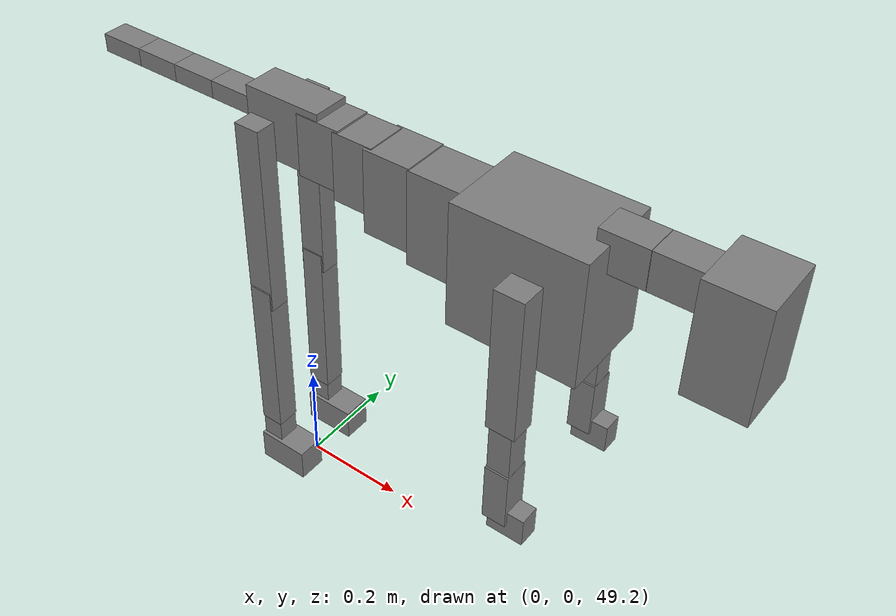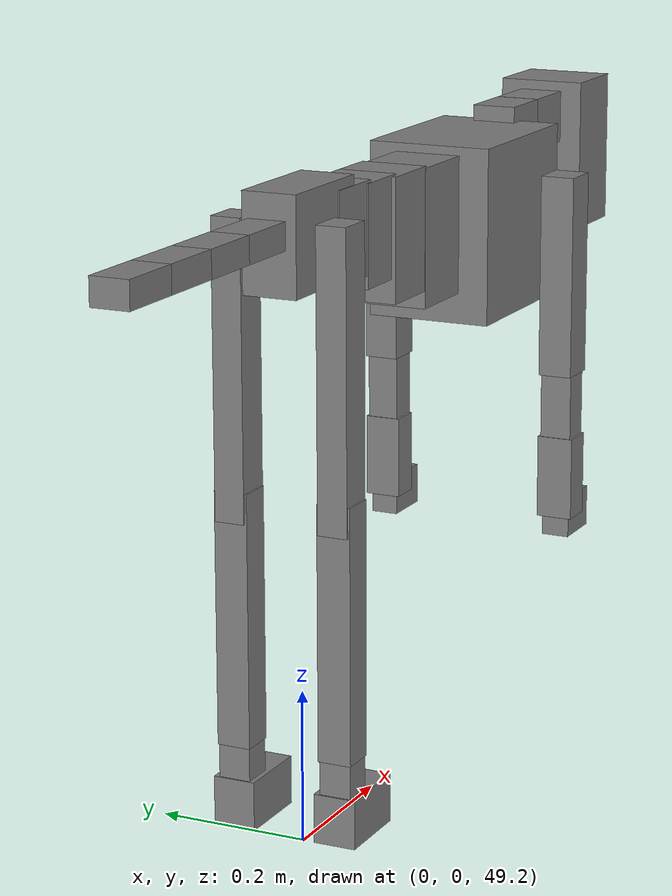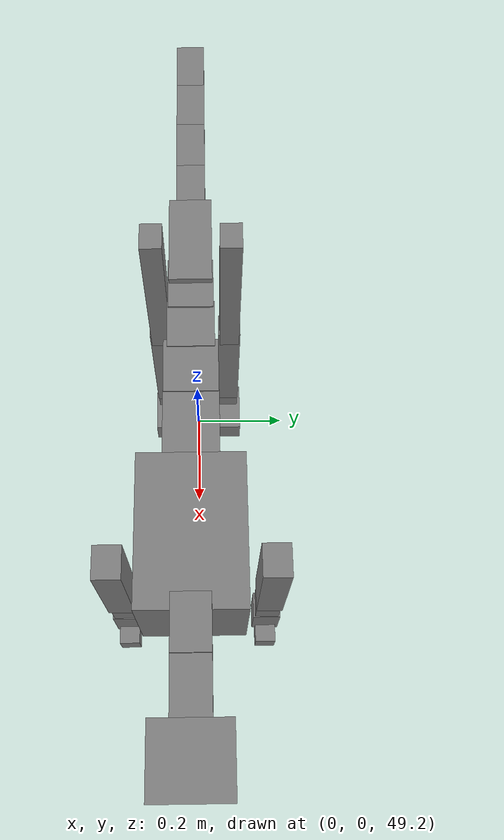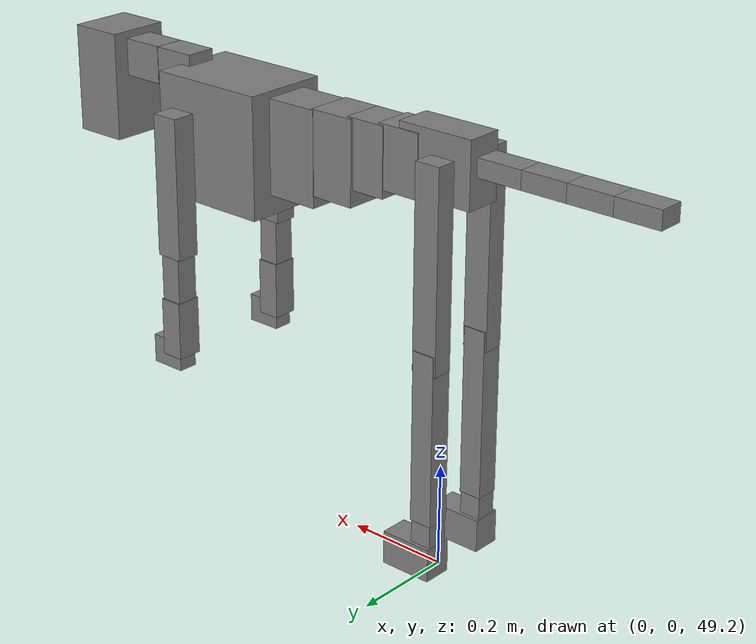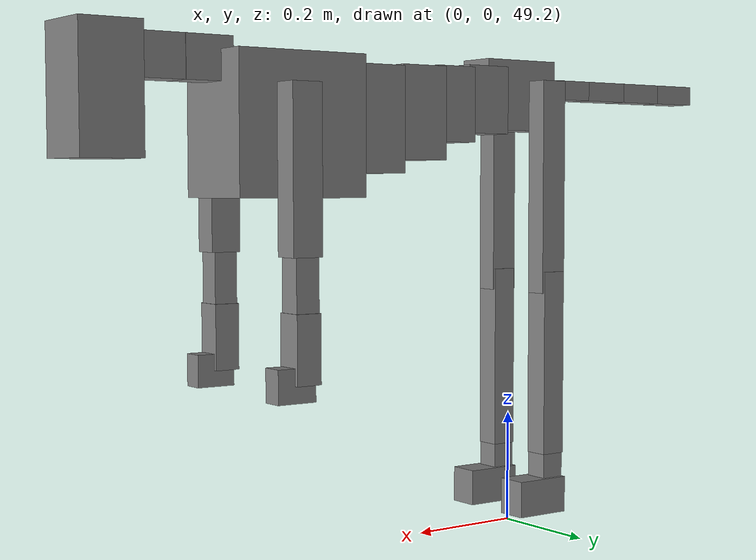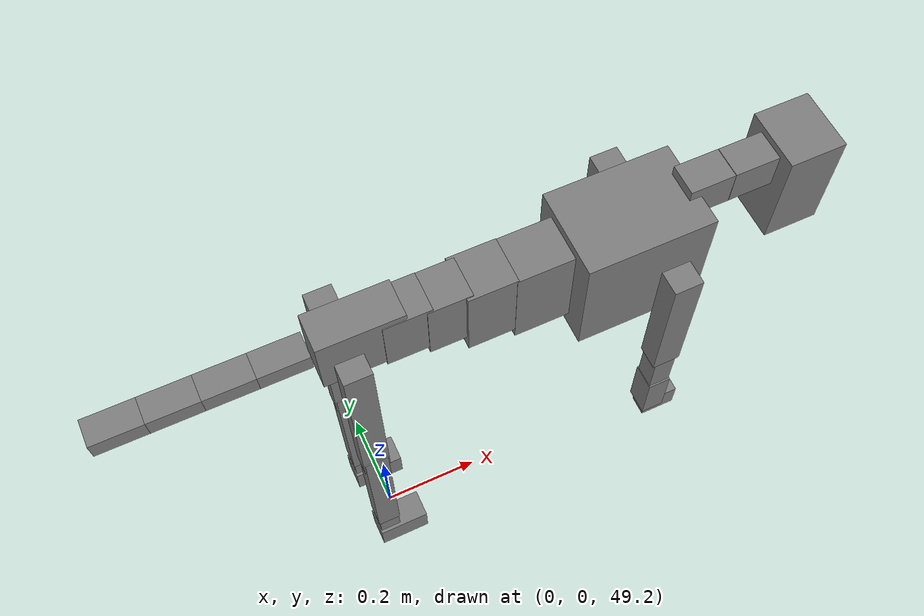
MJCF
<mujoco model="dog">

    <default>
        <joint armature="0.02" stiffness="1" damping="0.2" limited="true"/>
        <geom condim="3" friction="1 0.05 0.05" margin="0.01"/>
        <motor ctrllimited="true" ctrlrange="-1.0 1.0" forcelimited="true" gear="50"/>
    </default>

    <compiler inertiafromgeom="true" angle="radian"/>

    <option timestep="0.016" iterations="50" tolerance="1e-10" solver="Newton" jacobian="dense" cone="pyramidal"/>

    <size nconmax="20000" njmax="60000" nstack="5000000"/>
    <visual>
        <map force="0.1" zfar="30"/>
        <rgba haze="0.15 0.25 0.35 1"/>
        <quality shadowsize="2048"/>
        <global offwidth="800" offheight="800"/>
    </visual>

    <asset>
        <texture type="skybox" builtin="gradient" rgb1="0.3 0.5 0.7" rgb2="0 0 0" width="512" height="512"/>
        <texture name="texplane" type="2d" builtin="checker" rgb1=".2 .3 .4" rgb2=".1 0.15 0.2" width="512" height="512"
                 mark="cross" markrgb=".8 .8 .8"/>
        <texture name="texgeom" type="cube" builtin="flat" mark="cross" width="127" height="1278" rgb1="0.8 0.6 0.4"
                 rgb2="0.8 0.6 0.4" markrgb="1 1 1" random="0.01"/>

        <material name="matplane" reflectance="0.3" texture="texplane" texrepeat="1 1" texuniform="true"/>
        <material name="matgeom" texture="texgeom" texuniform="true" rgba="0.8 0.6 .4 1"/>
    </asset>

    <worldbody>
        <geom name="floor" pos="0 0 0" size="0 0 .25" type="plane" material="matplane" condim="3"/>

        <light directional="false" diffuse=".2 .2 .2" specular="0 0 0" pos="0 0 5" dir="0 0 -1" castshadow="false"/>
        <light mode="targetbodycom" target="torso" directional="false" diffuse=".8 .8 .8" specular="0.3 0.3 0.3"
               pos="0 0 4.0" dir="0 0 -1"/>

        <body name="root" pos="0 0 50">
            <freejoint name="root_1"/>
            <geom type="box" pos="0 0 -0.02" size="0.0774  0.0358  0.063" density="2030"/>

            <body name="spine1" pos="0.054 0 0">
                <joint name="spine1_y" axis="0 1 0" range="0 0.7" limited="true"/>
                <geom type="box" pos="0.02375 0 -0.03" size="0.04375  0.0375  0.05985" density="2030"/>

                <body name="spine2" pos="0.0612 0 0">
                    <joint name="spine2_y" axis="0 1 0" range="-0.15 0.15" limited="true"/>
                    <geom type="box" pos="0.03555  0  -0.04" size="0.04055  0.039  0.06615" density="2030"/>

                    <body name="spine3" pos="0.0730 0 0">
                        <joint name="spine3_y" axis="0 1 0" range="-0.15 0.15" limited="true"/>
                        <geom type="box" pos="0.03555  0  -0.057" size="0.04555  0.0445  0.081" density="2030"/>

                        <body name="spine4" pos="0.0780 0 0">
                            <joint name="spine4_y" axis="0 1 0" range="-0.15 0.15" limited="true"/>
                            <geom type="box" pos="0.05265  0  -0.07" size="0.05265  0.045  0.09135" density="2030"/>

                            <body name="torso" pos="0.1082 0 0">
                                <joint name="torso_y" axis="0 1 0" range="-0.15 0.15" limited="true"/>
                                <geom type="box" pos="0.11925  0  -0.085" size="0.11925  0.085  0.11745"
                                      density="2030"/>

                                <body name="neck1" pos="0.2160  0   0.0180">
                                    <joint name="neck1_y" axis="0 1 0" range="-1.2  -1" limited="true"/>
                                    <geom type="box" pos="0.0423  0  0" size="0.0423  0.03  0.036" density="2325"/>

                                    <body name="neck2" pos="0.0853  0  0">
                                        <joint name="neck2_y" axis="0 1 0" range="0.1  0" limited="true"/>
                                        <geom type="box" pos="0.0423  0  0" size="0.0423  0.03  0.036" density="2325"/>

                                        <body name="head" pos="0.0853  0  0">
                                            <joint name="head_y" axis="0 1 0" range="-0.3  -0.2" limited="true"/>
                                            <geom type="box" pos="0.0531  0  -0.055" size="0.0531  0.06  0.1044"
                                                  density="4030"/>

                                        </body>
                                    </body>
                                </body>

                                <body name="front_shoulder" pos="0.156  0   -0.0480">
                                    <joint name="front_shoulder_y" axis="0 1 0" range="-1 1.5" limited="true"/>
                                    <geom type="box" pos="0 0.13 -0.1099" size="0.0269  0.0230  0.1366" density="1158"/>
                                    <geom type="box" pos="0 -0.13 -0.1099" size="0.0269  0.0230  0.1366"
                                          density="1158"/>

                                    <body name="front_elbow" pos="0  0  -0.2198">
                                        <joint name="front_elbow_y" axis="0 1 0" range="-2 0" limited="true"/>
                                        <geom type="box" pos="0 0.13 -0.0637" size="0.0209  0.0214  0.0637"
                                              density="1081"/>
                                        <geom type="box" pos="0 -0.13 -0.0637" size="0.0209  0.0214  0.0637"
                                              density="1081"/>

                                        <body name="front_wrist" pos="0  0  -0.1273">
                                            <joint name="front_wrist_y" axis="0 1 0" range="-0.2 0" limited="true"/>
                                            <geom type="box" pos="0 0.13 -0.0433" size="0.0222  0.0247  0.0564"
                                                  density="1664"/>
                                            <geom type="box" pos="0 -0.13 -0.0433" size="0.0222  0.0247  0.0564"
                                                  density="1664"/>

                                            <body name="front_finger_end" pos="0  0  -0.0866">
                                                <joint name="front_finger_y" axis="0 1 0" range="-0.4 1"
                                                       limited="true"/>
                                                <geom type="box" pos="0.0189  0.13  -0.0128"
                                                      size="0.0346  0.0189  0.0278" density="1515"/>
                                                <geom type="box" pos="0.0189  -0.13  -0.0128"
                                                      size="0.0346  0.0189  0.0278" density="1515"/>

                                            </body>

                                        </body>
                                    </body>
                                </body>

                            </body>
                        </body>
                    </body>
                </body>
            </body>

            <body name="back_hip" pos="-0.03 0 -0.018">
                <joint name="back_hip_y" axis="0 1 0" range="-1.5 0.3" limited="true"/>
                <geom type="box" pos="0 0.07 -0.1673" size="0.0253  0.0198  0.1901" density="1154"/>
                <geom type="box" pos="0 -0.07 -0.1673" size="0.0253  0.0198  0.1901" density="1154"/>

                <body name="back_knee" pos="0  0  -0.3345">
                    <joint name="back_knee_y" axis="0 1 0" range="0 2.8" limited="true"/>
                    <geom type="box" pos="0 0.07 -0.1496" size="0.0226  0.0222  0.1651" density="1227"/>
                    <geom type="box" pos="0 -0.07 -0.1496" size="0.0226  0.0222  0.1651" density="1227"/>

                    <body name="back_ankle" pos="0  0  -0.2991">
                        <joint name="back_ankle_y" axis="0 1 0" range="-2.2 0" limited="true"/>
                        <geom type="box" pos="0 0.07 -0.0370" size="0.0211  0.0211  0.0483" density="1284"/>
                        <geom type="box" pos="0 -0.07 -0.0370" size="0.0211  0.0211  0.0483" density="1284"/>

                        <body name="back_toe_end" pos="0  0  -0.0741">
                            <joint name="back_toe_y" axis="0 1 0" range="-0.4 1" limited="true"/>
                            <geom type="box" pos="0.0280  0.07  -0.0171" size="0.0513  0.0280  0.0321" density="1515"/>
                            <geom type="box" pos="0.0280  -0.07  -0.0171" size="0.0513  0.0280  0.0321" density="1515"/>

                        </body>
                    </body>
                </body>
            </body>

            <body name="tail1" pos="-0.074 0 -0.006">
                <joint name="tail1_y" axis="0 1 0" range="-0.2 0.2" limited="true"/>
                <geom type="box" pos="-0.0536  0  0" size="0.045  0.025  0.0175" density="1587"/>

                <body name="tail2" pos="-0.09 0 0">
                    <joint name="tail2_y" axis="0 1 0" range="-0.2 0.2" limited="true"/>
                    <geom type="box" pos="-0.0536  0  0" size="0.045  0.025  0.0175" density="1587"/>

                    <body name="tail3" pos="-0.09 0 0">
                        <joint name="tail3_y" axis="0 1 0" range="-0.2 0.2" limited="true"/>
                        <geom type="box" pos="-0.0536  0  0" size="0.045  0.025  0.0175" density="1587"/>

                        <body name="tail4" pos="-0.09 0 0">
                            <joint name="tail4_y" axis="0 1 0" range="-0.2 0.2" limited="true"/>
                            <geom type="box" pos="-0.0536  0  0" size="0.045  0.025  0.0175" density="1587"/>

                        </body>
                    </body>
                </body>
            </body>
        </body>
    </worldbody>

    <actuator>
        <motor joint="spine1_y" forcerange="-150 150     "/>
        <motor joint="spine2_y" forcerange="-150 150     "/>
        <motor joint="spine3_y" forcerange="-150 150     "/>
        <motor joint="spine4_y" forcerange="-150 150     "/>
        <motor joint="torso_y" forcerange="-150 150     "/>
        <motor joint="neck1_y" forcerange="-100 100       "/>
        <motor joint="neck2_y" forcerange="-100 100       "/>
        <motor joint="head_y" forcerange="-150 150       "/>
        <motor joint="front_shoulder_y" forcerange="-139.08 114.32"/>
        <motor joint="front_elbow_y" forcerange="-113.66 141.91"/>
        <motor joint="front_wrist_y" forcerange="-92.15 105.12"/>
        <motor joint="front_finger_y" forcerange="-30.96 29.80"/>
        <motor joint="back_hip_y" forcerange="-218.07 246.15"/>
        <motor joint="back_knee_y" forcerange="-203.60 319.87"/>
        <motor joint="back_angle_y" forcerange="-94.03 143.81"/>
        <motor joint="back_toe_y" forcerange="-93.58 50.43"/>
        <motor joint="tail1_y" forcerange="-50 50     "/>
        <motor joint="tail2_y" forcerange="-50 50     "/>
        <motor joint="tail3_y" forcerange="-50 50     "/>
        <motor joint="tail4_y" forcerange="-50 50     "/>
    </actuator>
</mujoco>
